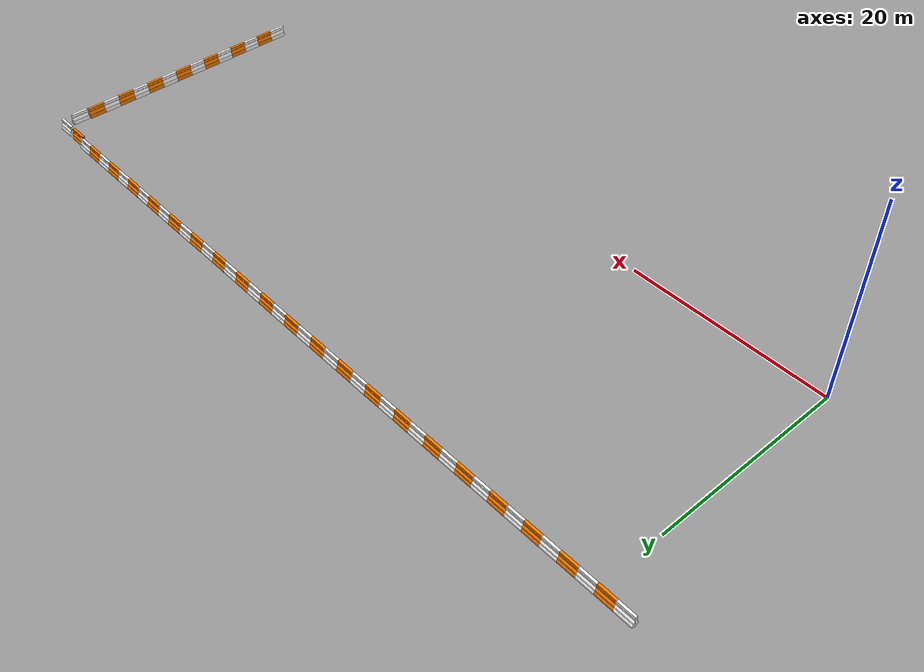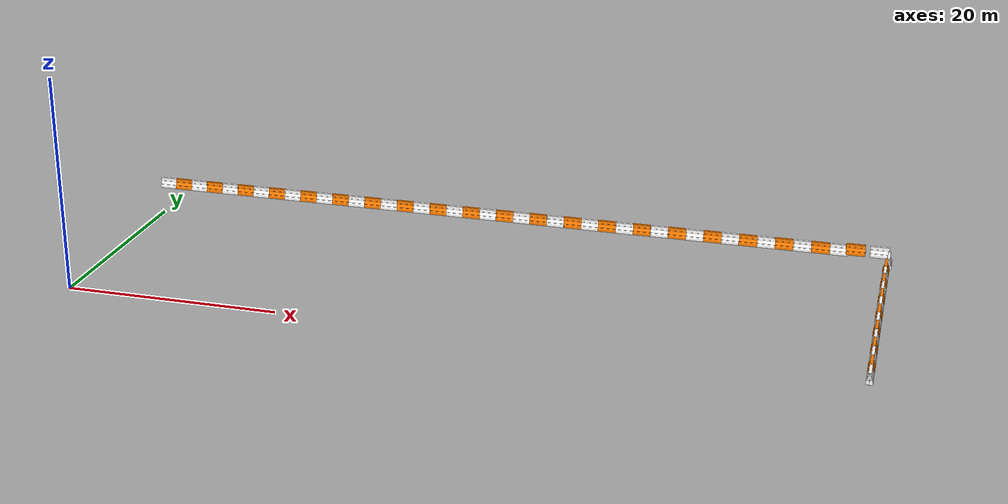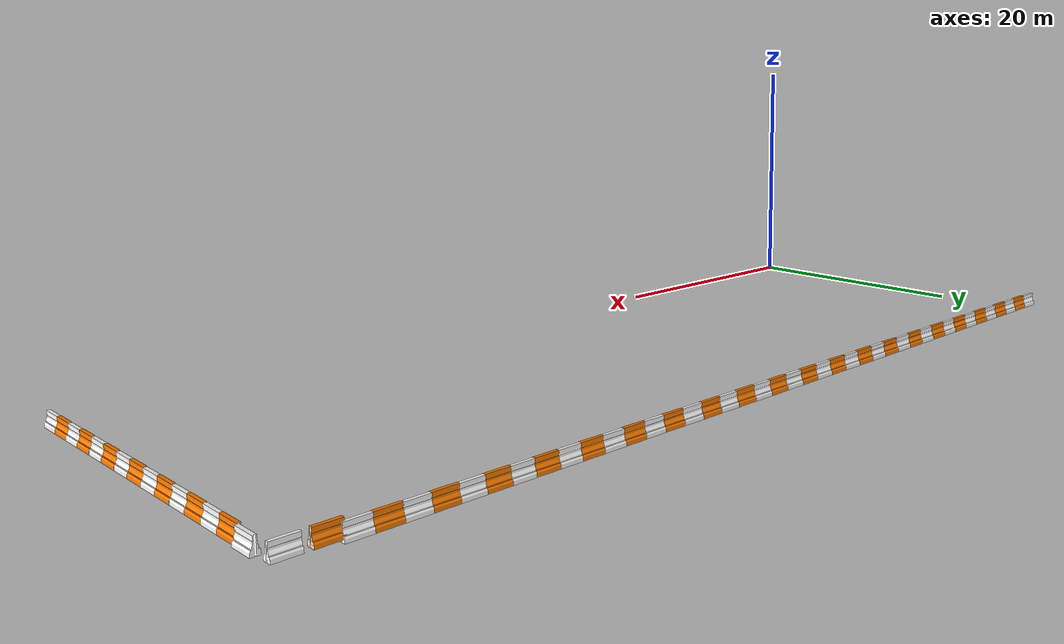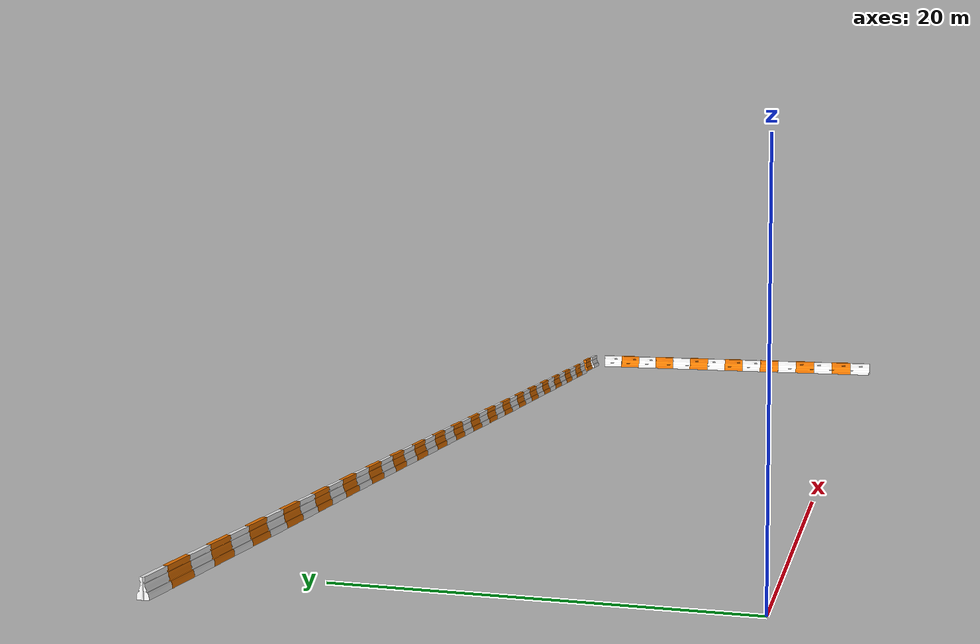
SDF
<?xml version="1.0" ?>
<sdf version='1.7'>
  <model name='White_Barrier_0'>
    <static>1</static>
    <link name='link'>
      <visual name='visual'>
        <geometry>
          <mesh>
            <uri>model://drc_practice_white_jersey_barrier/meshes/jersey_barrier.dae</uri>
          </mesh>
        </geometry>
      </visual>
      <collision name='collision'>
        <geometry>
          <mesh>
            <uri>model://drc_practice_white_jersey_barrier/meshes/jersey_barrier.dae</uri>
          </mesh>
        </geometry>
        <max_contacts>10</max_contacts>
        <surface>
          <contact>
            <ode/>
          </contact>
          <bounce/>
          <friction>
            <torsional>
              <ode/>
            </torsional>
            <ode/>
          </friction>
        </surface>
      </collision>
      <self_collide>0</self_collide>
      <enable_wind>0</enable_wind>
      <kinematic>0</kinematic>
    </link>
    <pose>71.8541 24.9076 0 0 -0 0</pose>
  </model>
  <model name='Orange_Barrier_0'>
    <static>1</static>
    <link name='link'>
      <visual name='visual'>
        <geometry>
          <mesh>
            <uri>model://drc_practice_orange_jersey_barrier/meshes/jersey_barrier.dae</uri>
          </mesh>
        </geometry>
      </visual>
      <collision name='collision'>
        <geometry>
          <mesh>
            <uri>model://drc_practice_orange_jersey_barrier/meshes/jersey_barrier.dae</uri>
          </mesh>
        </geometry>
        <max_contacts>10</max_contacts>
        <surface>
          <contact>
            <ode/>
          </contact>
          <bounce/>
          <friction>
            <torsional>
              <ode/>
            </torsional>
            <ode/>
          </friction>
        </surface>
      </collision>
      <self_collide>0</self_collide>
      <enable_wind>0</enable_wind>
      <kinematic>0</kinematic>
    </link>
    <pose>71.6996 23.0838 0 0 -0 0</pose>
  </model>
  <model name='White_Barrier_1'>
    <static>1</static>
    <link name='link'>
      <visual name='visual'>
        <geometry>
          <mesh>
            <uri>model://drc_practice_white_jersey_barrier/meshes/jersey_barrier.dae</uri>
          </mesh>
        </geometry>
      </visual>
      <collision name='collision'>
        <geometry>
          <mesh>
            <uri>model://drc_practice_white_jersey_barrier/meshes/jersey_barrier.dae</uri>
          </mesh>
        </geometry>
        <max_contacts>10</max_contacts>
        <surface>
          <contact>
            <ode/>
          </contact>
          <bounce/>
          <friction>
            <torsional>
              <ode/>
            </torsional>
            <ode/>
          </friction>
        </surface>
      </collision>
      <self_collide>0</self_collide>
      <enable_wind>0</enable_wind>
      <kinematic>0</kinematic>
    </link>
    <pose>71.6826 21.3409 0 0 -0 0</pose>
  </model>
  <model name='Orange_Barrier_1'>
    <static>1</static>
    <link name='link'>
      <visual name='visual'>
        <geometry>
          <mesh>
            <uri>model://drc_practice_orange_jersey_barrier/meshes/jersey_barrier.dae</uri>
          </mesh>
        </geometry>
      </visual>
      <collision name='collision'>
        <geometry>
          <mesh>
            <uri>model://drc_practice_orange_jersey_barrier/meshes/jersey_barrier.dae</uri>
          </mesh>
        </geometry>
        <max_contacts>10</max_contacts>
        <surface>
          <contact>
            <ode/>
          </contact>
          <bounce/>
          <friction>
            <torsional>
              <ode/>
            </torsional>
            <ode/>
          </friction>
        </surface>
      </collision>
      <self_collide>0</self_collide>
      <enable_wind>0</enable_wind>
      <kinematic>0</kinematic>
    </link>
    <pose>71.6727 19.6013 0 0 -0 0</pose>
  </model>
  <model name='White_Barrier_2'>
    <static>1</static>
    <link name='link'>
      <visual name='visual'>
        <geometry>
          <mesh>
            <uri>model://drc_practice_white_jersey_barrier/meshes/jersey_barrier.dae</uri>
          </mesh>
        </geometry>
      </visual>
      <collision name='collision'>
        <geometry>
          <mesh>
            <uri>model://drc_practice_white_jersey_barrier/meshes/jersey_barrier.dae</uri>
          </mesh>
        </geometry>
        <max_contacts>10</max_contacts>
        <surface>
          <contact>
            <ode/>
          </contact>
          <bounce/>
          <friction>
            <torsional>
              <ode/>
            </torsional>
            <ode/>
          </friction>
        </surface>
      </collision>
      <self_collide>0</self_collide>
      <enable_wind>0</enable_wind>
      <kinematic>0</kinematic>
    </link>
    <pose>71.6656 17.8502 0 0 -0 0</pose>
  </model>
  <model name='Orange_Barrier_2'>
    <static>1</static>
    <link name='link'>
      <visual name='visual'>
        <geometry>
          <mesh>
            <uri>model://drc_practice_orange_jersey_barrier/meshes/jersey_barrier.dae</uri>
          </mesh>
        </geometry>
      </visual>
      <collision name='collision'>
        <geometry>
          <mesh>
            <uri>model://drc_practice_orange_jersey_barrier/meshes/jersey_barrier.dae</uri>
          </mesh>
        </geometry>
        <max_contacts>10</max_contacts>
        <surface>
          <contact>
            <ode/>
          </contact>
          <bounce/>
          <friction>
            <torsional>
              <ode/>
            </torsional>
            <ode/>
          </friction>
        </surface>
      </collision>
      <self_collide>0</self_collide>
      <enable_wind>0</enable_wind>
      <kinematic>0</kinematic>
    </link>
    <pose>71.6589 16.1096 0 0 -0 0</pose>
  </model>
  <model name='White_Barrier_3'>
    <static>1</static>
    <link name='link'>
      <visual name='visual'>
        <geometry>
          <mesh>
            <uri>model://drc_practice_white_jersey_barrier/meshes/jersey_barrier.dae</uri>
          </mesh>
        </geometry>
      </visual>
      <collision name='collision'>
        <geometry>
          <mesh>
            <uri>model://drc_practice_white_jersey_barrier/meshes/jersey_barrier.dae</uri>
          </mesh>
        </geometry>
        <max_contacts>10</max_contacts>
        <surface>
          <contact>
            <ode/>
          </contact>
          <bounce/>
          <friction>
            <torsional>
              <ode/>
            </torsional>
            <ode/>
          </friction>
        </surface>
      </collision>
      <self_collide>0</self_collide>
      <enable_wind>0</enable_wind>
      <kinematic>0</kinematic>
    </link>
    <pose>71.6501 14.3592 0 0 -0 0</pose>
  </model>
  <model name='Orange_Barrier_3'>
    <static>1</static>
    <link name='link'>
      <visual name='visual'>
        <geometry>
          <mesh>
            <uri>model://drc_practice_orange_jersey_barrier/meshes/jersey_barrier.dae</uri>
          </mesh>
        </geometry>
      </visual>
      <collision name='collision'>
        <geometry>
          <mesh>
            <uri>model://drc_practice_orange_jersey_barrier/meshes/jersey_barrier.dae</uri>
          </mesh>
        </geometry>
        <max_contacts>10</max_contacts>
        <surface>
          <contact>
            <ode/>
          </contact>
          <bounce/>
          <friction>
            <torsional>
              <ode/>
            </torsional>
            <ode/>
          </friction>
        </surface>
      </collision>
      <self_collide>0</self_collide>
      <enable_wind>0</enable_wind>
      <kinematic>0</kinematic>
    </link>
    <pose>71.6387 12.6221 0 0 -0 0</pose>
  </model>
  <model name='White_Barrier_4'>
    <static>1</static>
    <link name='link'>
      <visual name='visual'>
        <geometry>
          <mesh>
            <uri>model://drc_practice_white_jersey_barrier/meshes/jersey_barrier.dae</uri>
          </mesh>
        </geometry>
      </visual>
      <collision name='collision'>
        <geometry>
          <mesh>
            <uri>model://drc_practice_white_jersey_barrier/meshes/jersey_barrier.dae</uri>
          </mesh>
        </geometry>
        <max_contacts>10</max_contacts>
        <surface>
          <contact>
            <ode/>
          </contact>
          <bounce/>
          <friction>
            <torsional>
              <ode/>
            </torsional>
            <ode/>
          </friction>
        </surface>
      </collision>
      <self_collide>0</self_collide>
      <enable_wind>0</enable_wind>
      <kinematic>0</kinematic>
    </link>
    <pose>71.632 10.8735 0 0 -0 0</pose>
  </model>
  <model name='Orange_Barrier_4'>
    <static>1</static>
    <link name='link'>
      <visual name='visual'>
        <geometry>
          <mesh>
            <uri>model://drc_practice_orange_jersey_barrier/meshes/jersey_barrier.dae</uri>
          </mesh>
        </geometry>
      </visual>
      <collision name='collision'>
        <geometry>
          <mesh>
            <uri>model://drc_practice_orange_jersey_barrier/meshes/jersey_barrier.dae</uri>
          </mesh>
        </geometry>
        <max_contacts>10</max_contacts>
        <surface>
          <contact>
            <ode/>
          </contact>
          <bounce/>
          <friction>
            <torsional>
              <ode/>
            </torsional>
            <ode/>
          </friction>
        </surface>
      </collision>
      <self_collide>0</self_collide>
      <enable_wind>0</enable_wind>
      <kinematic>0</kinematic>
    </link>
    <pose>71.6255 9.12889 0 0 -0 0</pose>
  </model>
  <model name='White_Barrier_5'>
    <static>1</static>
    <link name='link'>
      <visual name='visual'>
        <geometry>
          <mesh>
            <uri>model://drc_practice_white_jersey_barrier/meshes/jersey_barrier.dae</uri>
          </mesh>
        </geometry>
      </visual>
      <collision name='collision'>
        <geometry>
          <mesh>
            <uri>model://drc_practice_white_jersey_barrier/meshes/jersey_barrier.dae</uri>
          </mesh>
        </geometry>
        <max_contacts>10</max_contacts>
        <surface>
          <contact>
            <ode/>
          </contact>
          <bounce/>
          <friction>
            <torsional>
              <ode/>
            </torsional>
            <ode/>
          </friction>
        </surface>
      </collision>
      <self_collide>0</self_collide>
      <enable_wind>0</enable_wind>
      <kinematic>0</kinematic>
    </link>
    <pose>71.6246 7.3814 0 0 -0 0</pose>
  </model>
  <model name='Orange_Barrier_5'>
    <static>1</static>
    <link name='link'>
      <visual name='visual'>
        <geometry>
          <mesh>
            <uri>model://drc_practice_orange_jersey_barrier/meshes/jersey_barrier.dae</uri>
          </mesh>
        </geometry>
      </visual>
      <collision name='collision'>
        <geometry>
          <mesh>
            <uri>model://drc_practice_orange_jersey_barrier/meshes/jersey_barrier.dae</uri>
          </mesh>
        </geometry>
        <max_contacts>10</max_contacts>
        <surface>
          <contact>
            <ode/>
          </contact>
          <bounce/>
          <friction>
            <torsional>
              <ode/>
            </torsional>
            <ode/>
          </friction>
        </surface>
      </collision>
      <self_collide>0</self_collide>
      <enable_wind>0</enable_wind>
      <kinematic>0</kinematic>
    </link>
    <pose>71.62 5.63535 0 0 -0 0</pose>
  </model>
  <model name='White_Barrier_6'>
    <static>1</static>
    <link name='link'>
      <visual name='visual'>
        <geometry>
          <mesh>
            <uri>model://drc_practice_white_jersey_barrier/meshes/jersey_barrier.dae</uri>
          </mesh>
        </geometry>
      </visual>
      <collision name='collision'>
        <geometry>
          <mesh>
            <uri>model://drc_practice_white_jersey_barrier/meshes/jersey_barrier.dae</uri>
          </mesh>
        </geometry>
        <max_contacts>10</max_contacts>
        <surface>
          <contact>
            <ode/>
          </contact>
          <bounce/>
          <friction>
            <torsional>
              <ode/>
            </torsional>
            <ode/>
          </friction>
        </surface>
      </collision>
      <self_collide>0</self_collide>
      <enable_wind>0</enable_wind>
      <kinematic>0</kinematic>
    </link>
    <pose>71.6199 3.88555 0 0 -0 0</pose>
  </model>
  <model name='Orange_Barrier_6'>
    <static>1</static>
    <link name='link'>
      <visual name='visual'>
        <geometry>
          <mesh>
            <uri>model://drc_practice_orange_jersey_barrier/meshes/jersey_barrier.dae</uri>
          </mesh>
        </geometry>
      </visual>
      <collision name='collision'>
        <geometry>
          <mesh>
            <uri>model://drc_practice_orange_jersey_barrier/meshes/jersey_barrier.dae</uri>
          </mesh>
        </geometry>
        <max_contacts>10</max_contacts>
        <surface>
          <contact>
            <ode/>
          </contact>
          <bounce/>
          <friction>
            <torsional>
              <ode/>
            </torsional>
            <ode/>
          </friction>
        </surface>
      </collision>
      <self_collide>0</self_collide>
      <enable_wind>0</enable_wind>
      <kinematic>0</kinematic>
    </link>
    <pose>71.6079 2.14539 0 0 -0 0</pose>
  </model>
  <model name='White_Barrier_7'>
    <static>1</static>
    <link name='link'>
      <visual name='visual'>
        <geometry>
          <mesh>
            <uri>model://drc_practice_white_jersey_barrier/meshes/jersey_barrier.dae</uri>
          </mesh>
        </geometry>
      </visual>
      <collision name='collision'>
        <geometry>
          <mesh>
            <uri>model://drc_practice_white_jersey_barrier/meshes/jersey_barrier.dae</uri>
          </mesh>
        </geometry>
        <max_contacts>10</max_contacts>
        <surface>
          <contact>
            <ode/>
          </contact>
          <bounce/>
          <friction>
            <torsional>
              <ode/>
            </torsional>
            <ode/>
          </friction>
        </surface>
      </collision>
      <self_collide>0</self_collide>
      <enable_wind>0</enable_wind>
      <kinematic>0</kinematic>
    </link>
    <pose>71.6005 0.396889 0 0 -0 0</pose>
  </model>
  <model name='White_Barrier_8'>
    <static>1</static>
    <link name='link'>
      <visual name='visual'>
        <geometry>
          <mesh>
            <uri>model://drc_practice_white_jersey_barrier/meshes/jersey_barrier.dae</uri>
          </mesh>
        </geometry>
      </visual>
      <collision name='collision'>
        <geometry>
          <mesh>
            <uri>model://drc_practice_white_jersey_barrier/meshes/jersey_barrier.dae</uri>
          </mesh>
        </geometry>
        <max_contacts>10</max_contacts>
        <surface>
          <contact>
            <ode/>
          </contact>
          <bounce/>
          <friction>
            <torsional>
              <ode/>
            </torsional>
            <ode/>
          </friction>
        </surface>
      </collision>
      <self_collide>0</self_collide>
      <enable_wind>0</enable_wind>
      <kinematic>0</kinematic>
    </link>
    <pose>70.9692 26.7842 0 0 -0 -1.5708</pose>
  </model>
  <model name='Orange_Barrier_7'>
    <static>1</static>
    <link name='link'>
      <visual name='visual'>
        <geometry>
          <mesh>
            <uri>model://drc_practice_orange_jersey_barrier/meshes/jersey_barrier.dae</uri>
          </mesh>
        </geometry>
      </visual>
      <collision name='collision'>
        <geometry>
          <mesh>
            <uri>model://drc_practice_orange_jersey_barrier/meshes/jersey_barrier.dae</uri>
          </mesh>
        </geometry>
        <max_contacts>10</max_contacts>
        <surface>
          <contact>
            <ode/>
          </contact>
          <bounce/>
          <friction>
            <torsional>
              <ode/>
            </torsional>
            <ode/>
          </friction>
        </surface>
      </collision>
      <self_collide>0</self_collide>
      <enable_wind>0</enable_wind>
      <kinematic>0</kinematic>
    </link>
    <pose>68.7091 26.8065 0 0 -0 -1.5708</pose>
  </model>
  <model name='White_Barrier_9'>
    <static>1</static>
    <link name='link'>
      <visual name='visual'>
        <geometry>
          <mesh>
            <uri>model://drc_practice_white_jersey_barrier/meshes/jersey_barrier.dae</uri>
          </mesh>
        </geometry>
      </visual>
      <collision name='collision'>
        <geometry>
          <mesh>
            <uri>model://drc_practice_white_jersey_barrier/meshes/jersey_barrier.dae</uri>
          </mesh>
        </geometry>
        <max_contacts>10</max_contacts>
        <surface>
          <contact>
            <ode/>
          </contact>
          <bounce/>
          <friction>
            <torsional>
              <ode/>
            </torsional>
            <ode/>
          </friction>
        </surface>
      </collision>
      <self_collide>0</self_collide>
      <enable_wind>0</enable_wind>
      <kinematic>0</kinematic>
    </link>
    <pose>67.1446 26.9316 -0.18 0 0 -1.5708</pose>
  </model>
  <model name='Orange_Barrier_8'>
    <static>1</static>
    <link name='link'>
      <visual name='visual'>
        <geometry>
          <mesh>
            <uri>model://drc_practice_orange_jersey_barrier/meshes/jersey_barrier.dae</uri>
          </mesh>
        </geometry>
      </visual>
      <collision name='collision'>
        <geometry>
          <mesh>
            <uri>model://drc_practice_orange_jersey_barrier/meshes/jersey_barrier.dae</uri>
          </mesh>
        </geometry>
        <max_contacts>10</max_contacts>
        <surface>
          <contact>
            <ode/>
          </contact>
          <bounce/>
          <friction>
            <torsional>
              <ode/>
            </torsional>
            <ode/>
          </friction>
        </surface>
      </collision>
      <self_collide>0</self_collide>
      <enable_wind>0</enable_wind>
      <kinematic>0</kinematic>
    </link>
    <pose>65.3989 26.9299 -0.18 0 0 -1.5708</pose>
  </model>
  <model name='White_Barrier_10'>
    <static>1</static>
    <link name='link'>
      <visual name='visual'>
        <geometry>
          <mesh>
            <uri>model://drc_practice_white_jersey_barrier/meshes/jersey_barrier.dae</uri>
          </mesh>
        </geometry>
      </visual>
      <collision name='collision'>
        <geometry>
          <mesh>
            <uri>model://drc_practice_white_jersey_barrier/meshes/jersey_barrier.dae</uri>
          </mesh>
        </geometry>
        <max_contacts>10</max_contacts>
        <surface>
          <contact>
            <ode/>
          </contact>
          <bounce/>
          <friction>
            <torsional>
              <ode/>
            </torsional>
            <ode/>
          </friction>
        </surface>
      </collision>
      <self_collide>0</self_collide>
      <enable_wind>0</enable_wind>
      <kinematic>0</kinematic>
    </link>
    <pose>63.6593 26.9384 -0.18 0 0 -1.5708</pose>
  </model>
  <model name='Orange_Barrier_9'>
    <static>1</static>
    <link name='link'>
      <visual name='visual'>
        <geometry>
          <mesh>
            <uri>model://drc_practice_orange_jersey_barrier/meshes/jersey_barrier.dae</uri>
          </mesh>
        </geometry>
      </visual>
      <collision name='collision'>
        <geometry>
          <mesh>
            <uri>model://drc_practice_orange_jersey_barrier/meshes/jersey_barrier.dae</uri>
          </mesh>
        </geometry>
        <max_contacts>10</max_contacts>
        <surface>
          <contact>
            <ode/>
          </contact>
          <bounce/>
          <friction>
            <torsional>
              <ode/>
            </torsional>
            <ode/>
          </friction>
        </surface>
      </collision>
      <self_collide>0</self_collide>
      <enable_wind>0</enable_wind>
      <kinematic>0</kinematic>
    </link>
    <pose>61.9171 26.9366 -0.18 0 0 -1.5708</pose>
  </model>
  <model name='White_Barrier_11'>
    <static>1</static>
    <link name='link'>
      <visual name='visual'>
        <geometry>
          <mesh>
            <uri>model://drc_practice_white_jersey_barrier/meshes/jersey_barrier.dae</uri>
          </mesh>
        </geometry>
      </visual>
      <collision name='collision'>
        <geometry>
          <mesh>
            <uri>model://drc_practice_white_jersey_barrier/meshes/jersey_barrier.dae</uri>
          </mesh>
        </geometry>
        <max_contacts>10</max_contacts>
        <surface>
          <contact>
            <ode/>
          </contact>
          <bounce/>
          <friction>
            <torsional>
              <ode/>
            </torsional>
            <ode/>
          </friction>
        </surface>
      </collision>
      <self_collide>0</self_collide>
      <enable_wind>0</enable_wind>
      <kinematic>0</kinematic>
    </link>
    <pose>60.1789 26.937 -0.18 0 0 -1.5708</pose>
  </model>
  <model name='Orange_Barrier_10'>
    <static>1</static>
    <link name='link'>
      <visual name='visual'>
        <geometry>
          <mesh>
            <uri>model://drc_practice_orange_jersey_barrier/meshes/jersey_barrier.dae</uri>
          </mesh>
        </geometry>
      </visual>
      <collision name='collision'>
        <geometry>
          <mesh>
            <uri>model://drc_practice_orange_jersey_barrier/meshes/jersey_barrier.dae</uri>
          </mesh>
        </geometry>
        <max_contacts>10</max_contacts>
        <surface>
          <contact>
            <ode/>
          </contact>
          <bounce/>
          <friction>
            <torsional>
              <ode/>
            </torsional>
            <ode/>
          </friction>
        </surface>
      </collision>
      <self_collide>0</self_collide>
      <enable_wind>0</enable_wind>
      <kinematic>0</kinematic>
    </link>
    <pose>58.4402 26.9344 -0.18 0 0 -1.5708</pose>
  </model>
  <model name='White_Barrier_12'>
    <static>1</static>
    <link name='link'>
      <visual name='visual'>
        <geometry>
          <mesh>
            <uri>model://drc_practice_white_jersey_barrier/meshes/jersey_barrier.dae</uri>
          </mesh>
        </geometry>
      </visual>
      <collision name='collision'>
        <geometry>
          <mesh>
            <uri>model://drc_practice_white_jersey_barrier/meshes/jersey_barrier.dae</uri>
          </mesh>
        </geometry>
        <max_contacts>10</max_contacts>
        <surface>
          <contact>
            <ode/>
          </contact>
          <bounce/>
          <friction>
            <torsional>
              <ode/>
            </torsional>
            <ode/>
          </friction>
        </surface>
      </collision>
      <self_collide>0</self_collide>
      <enable_wind>0</enable_wind>
      <kinematic>0</kinematic>
    </link>
    <pose>56.7081 26.9391 -0.18 0 0 -1.5708</pose>
  </model>
  <model name='Orange_Barrier_11'>
    <static>1</static>
    <link name='link'>
      <visual name='visual'>
        <geometry>
          <mesh>
            <uri>model://drc_practice_orange_jersey_barrier/meshes/jersey_barrier.dae</uri>
          </mesh>
        </geometry>
      </visual>
      <collision name='collision'>
        <geometry>
          <mesh>
            <uri>model://drc_practice_orange_jersey_barrier/meshes/jersey_barrier.dae</uri>
          </mesh>
        </geometry>
        <max_contacts>10</max_contacts>
        <surface>
          <contact>
            <ode/>
          </contact>
          <bounce/>
          <friction>
            <torsional>
              <ode/>
            </torsional>
            <ode/>
          </friction>
        </surface>
      </collision>
      <self_collide>0</self_collide>
      <enable_wind>0</enable_wind>
      <kinematic>0</kinematic>
    </link>
    <pose>54.9667 26.9441 -0.18 0 0 -1.5708</pose>
  </model>
  <model name='White_Barrier_13'>
    <static>1</static>
    <link name='link'>
      <visual name='visual'>
        <geometry>
          <mesh>
            <uri>model://drc_practice_white_jersey_barrier/meshes/jersey_barrier.dae</uri>
          </mesh>
        </geometry>
      </visual>
      <collision name='collision'>
        <geometry>
          <mesh>
            <uri>model://drc_practice_white_jersey_barrier/meshes/jersey_barrier.dae</uri>
          </mesh>
        </geometry>
        <max_contacts>10</max_contacts>
        <surface>
          <contact>
            <ode/>
          </contact>
          <bounce/>
          <friction>
            <torsional>
              <ode/>
            </torsional>
            <ode/>
          </friction>
        </surface>
      </collision>
      <self_collide>0</self_collide>
      <enable_wind>0</enable_wind>
      <kinematic>0</kinematic>
    </link>
    <pose>53.2245 26.9447 -0.18 0 0 -1.5708</pose>
  </model>
  <model name='Orange_Barrier_12'>
    <static>1</static>
    <link name='link'>
      <visual name='visual'>
        <geometry>
          <mesh>
            <uri>model://drc_practice_orange_jersey_barrier/meshes/jersey_barrier.dae</uri>
          </mesh>
        </geometry>
      </visual>
      <collision name='collision'>
        <geometry>
          <mesh>
            <uri>model://drc_practice_orange_jersey_barrier/meshes/jersey_barrier.dae</uri>
          </mesh>
        </geometry>
        <max_contacts>10</max_contacts>
        <surface>
          <contact>
            <ode/>
          </contact>
          <bounce/>
          <friction>
            <torsional>
              <ode/>
            </torsional>
            <ode/>
          </friction>
        </surface>
      </collision>
      <self_collide>0</self_collide>
      <enable_wind>0</enable_wind>
      <kinematic>0</kinematic>
    </link>
    <pose>51.486 26.9505 -0.18 0 0 -1.5708</pose>
  </model>
  <model name='White_Barrier_14'>
    <static>1</static>
    <link name='link'>
      <visual name='visual'>
        <geometry>
          <mesh>
            <uri>model://drc_practice_white_jersey_barrier/meshes/jersey_barrier.dae</uri>
          </mesh>
        </geometry>
      </visual>
      <collision name='collision'>
        <geometry>
          <mesh>
            <uri>model://drc_practice_white_jersey_barrier/meshes/jersey_barrier.dae</uri>
          </mesh>
        </geometry>
        <max_contacts>10</max_contacts>
        <surface>
          <contact>
            <ode/>
          </contact>
          <bounce/>
          <friction>
            <torsional>
              <ode/>
            </torsional>
            <ode/>
          </friction>
        </surface>
      </collision>
      <self_collide>0</self_collide>
      <enable_wind>0</enable_wind>
      <kinematic>0</kinematic>
    </link>
    <pose>49.7323 26.948 -0.18 0 0 -1.5708</pose>
  </model>
  <model name='Orange_Barrier_13'>
    <static>1</static>
    <link name='link'>
      <visual name='visual'>
        <geometry>
          <mesh>
            <uri>model://drc_practice_orange_jersey_barrier/meshes/jersey_barrier.dae</uri>
          </mesh>
        </geometry>
      </visual>
      <collision name='collision'>
        <geometry>
          <mesh>
            <uri>model://drc_practice_orange_jersey_barrier/meshes/jersey_barrier.dae</uri>
          </mesh>
        </geometry>
        <max_contacts>10</max_contacts>
        <surface>
          <contact>
            <ode/>
          </contact>
          <bounce/>
          <friction>
            <torsional>
              <ode/>
            </torsional>
            <ode/>
          </friction>
        </surface>
      </collision>
      <self_collide>0</self_collide>
      <enable_wind>0</enable_wind>
      <kinematic>0</kinematic>
    </link>
    <pose>47.9831 26.9378 -0.18 0 0 -1.5708</pose>
  </model>
  <model name='White_Barrier_15'>
    <static>1</static>
    <link name='link'>
      <visual name='visual'>
        <geometry>
          <mesh>
            <uri>model://drc_practice_white_jersey_barrier/meshes/jersey_barrier.dae</uri>
          </mesh>
        </geometry>
      </visual>
      <collision name='collision'>
        <geometry>
          <mesh>
            <uri>model://drc_practice_white_jersey_barrier/meshes/jersey_barrier.dae</uri>
          </mesh>
        </geometry>
        <max_contacts>10</max_contacts>
        <surface>
          <contact>
            <ode/>
          </contact>
          <bounce/>
          <friction>
            <torsional>
              <ode/>
            </torsional>
            <ode/>
          </friction>
        </surface>
      </collision>
      <self_collide>0</self_collide>
      <enable_wind>0</enable_wind>
      <kinematic>0</kinematic>
    </link>
    <pose>46.2494 26.9177 -0.18 0 0 -1.5708</pose>
  </model>
  <model name='Orange_Barrier_14'>
    <static>1</static>
    <link name='link'>
      <visual name='visual'>
        <geometry>
          <mesh>
            <uri>model://drc_practice_orange_jersey_barrier/meshes/jersey_barrier.dae</uri>
          </mesh>
        </geometry>
      </visual>
      <collision name='collision'>
        <geometry>
          <mesh>
            <uri>model://drc_practice_orange_jersey_barrier/meshes/jersey_barrier.dae</uri>
          </mesh>
        </geometry>
        <max_contacts>10</max_contacts>
        <surface>
          <contact>
            <ode/>
          </contact>
          <bounce/>
          <friction>
            <torsional>
              <ode/>
            </torsional>
            <ode/>
          </friction>
        </surface>
      </collision>
      <self_collide>0</self_collide>
      <enable_wind>0</enable_wind>
      <kinematic>0</kinematic>
    </link>
    <pose>44.497 26.9304 -0.18 0 0 -1.5708</pose>
  </model>
  <model name='White_Barrier_16'>
    <static>1</static>
    <link name='link'>
      <visual name='visual'>
        <geometry>
          <mesh>
            <uri>model://drc_practice_white_jersey_barrier/meshes/jersey_barrier.dae</uri>
          </mesh>
        </geometry>
      </visual>
      <collision name='collision'>
        <geometry>
          <mesh>
            <uri>model://drc_practice_white_jersey_barrier/meshes/jersey_barrier.dae</uri>
          </mesh>
        </geometry>
        <max_contacts>10</max_contacts>
        <surface>
          <contact>
            <ode/>
          </contact>
          <bounce/>
          <friction>
            <torsional>
              <ode/>
            </torsional>
            <ode/>
          </friction>
        </surface>
      </collision>
      <self_collide>0</self_collide>
      <enable_wind>0</enable_wind>
      <kinematic>0</kinematic>
    </link>
    <pose>42.7602 26.9374 -0.18 0 0 -1.5708</pose>
  </model>
  <model name='Orange_Barrier_15'>
    <static>1</static>
    <link name='link'>
      <visual name='visual'>
        <geometry>
          <mesh>
            <uri>model://drc_practice_orange_jersey_barrier/meshes/jersey_barrier.dae</uri>
          </mesh>
        </geometry>
      </visual>
      <collision name='collision'>
        <geometry>
          <mesh>
            <uri>model://drc_practice_orange_jersey_barrier/meshes/jersey_barrier.dae</uri>
          </mesh>
        </geometry>
        <max_contacts>10</max_contacts>
        <surface>
          <contact>
            <ode/>
          </contact>
          <bounce/>
          <friction>
            <torsional>
              <ode/>
            </torsional>
            <ode/>
          </friction>
        </surface>
      </collision>
      <self_collide>0</self_collide>
      <enable_wind>0</enable_wind>
      <kinematic>0</kinematic>
    </link>
    <pose>41.0065 26.9509 -0.18 0 0 -1.5708</pose>
  </model>
  <model name='White_Barrier_17'>
    <static>1</static>
    <link name='link'>
      <visual name='visual'>
        <geometry>
          <mesh>
            <uri>model://drc_practice_white_jersey_barrier/meshes/jersey_barrier.dae</uri>
          </mesh>
        </geometry>
      </visual>
      <collision name='collision'>
        <geometry>
          <mesh>
            <uri>model://drc_practice_white_jersey_barrier/meshes/jersey_barrier.dae</uri>
          </mesh>
        </geometry>
        <max_contacts>10</max_contacts>
        <surface>
          <contact>
            <ode/>
          </contact>
          <bounce/>
          <friction>
            <torsional>
              <ode/>
            </torsional>
            <ode/>
          </friction>
        </surface>
      </collision>
      <self_collide>0</self_collide>
      <enable_wind>0</enable_wind>
      <kinematic>0</kinematic>
    </link>
    <pose>39.2359 26.9565 -0.18 0 0 -1.5708</pose>
  </model>
  <model name='Orange_Barrier_16'>
    <static>1</static>
    <link name='link'>
      <visual name='visual'>
        <geometry>
          <mesh>
            <uri>model://drc_practice_orange_jersey_barrier/meshes/jersey_barrier.dae</uri>
          </mesh>
        </geometry>
      </visual>
      <collision name='collision'>
        <geometry>
          <mesh>
            <uri>model://drc_practice_orange_jersey_barrier/meshes/jersey_barrier.dae</uri>
          </mesh>
        </geometry>
        <max_contacts>10</max_contacts>
        <surface>
          <contact>
            <ode/>
          </contact>
          <bounce/>
          <friction>
            <torsional>
              <ode/>
            </torsional>
            <ode/>
          </friction>
        </surface>
      </collision>
      <self_collide>0</self_collide>
      <enable_wind>0</enable_wind>
      <kinematic>0</kinematic>
    </link>
    <pose>37.4778 26.9602 -0.18 0 0 -1.5708</pose>
  </model>
  <model name='White_Barrier_18'>
    <static>1</static>
    <link name='link'>
      <visual name='visual'>
        <geometry>
          <mesh>
            <uri>model://drc_practice_white_jersey_barrier/meshes/jersey_barrier.dae</uri>
          </mesh>
        </geometry>
      </visual>
      <collision name='collision'>
        <geometry>
          <mesh>
            <uri>model://drc_practice_white_jersey_barrier/meshes/jersey_barrier.dae</uri>
          </mesh>
        </geometry>
        <max_contacts>10</max_contacts>
        <surface>
          <contact>
            <ode/>
          </contact>
          <bounce/>
          <friction>
            <torsional>
              <ode/>
            </torsional>
            <ode/>
          </friction>
        </surface>
      </collision>
      <self_collide>0</self_collide>
      <enable_wind>0</enable_wind>
      <kinematic>0</kinematic>
    </link>
    <pose>35.7416 26.9725 -0.18 0 0 -1.5708</pose>
  </model>
  <model name='Orange_Barrier_17'>
    <static>1</static>
    <link name='link'>
      <visual name='visual'>
        <geometry>
          <mesh>
            <uri>model://drc_practice_orange_jersey_barrier/meshes/jersey_barrier.dae</uri>
          </mesh>
        </geometry>
      </visual>
      <collision name='collision'>
        <geometry>
          <mesh>
            <uri>model://drc_practice_orange_jersey_barrier/meshes/jersey_barrier.dae</uri>
          </mesh>
        </geometry>
        <max_contacts>10</max_contacts>
        <surface>
          <contact>
            <ode/>
          </contact>
          <bounce/>
          <friction>
            <torsional>
              <ode/>
            </torsional>
            <ode/>
          </friction>
        </surface>
      </collision>
      <self_collide>0</self_collide>
      <enable_wind>0</enable_wind>
      <kinematic>0</kinematic>
    </link>
    <pose>33.9965 26.979 -0.18 0 0 -1.5708</pose>
  </model>
  <model name='White_Barrier_19'>
    <static>1</static>
    <link name='link'>
      <visual name='visual'>
        <geometry>
          <mesh>
            <uri>model://drc_practice_white_jersey_barrier/meshes/jersey_barrier.dae</uri>
          </mesh>
        </geometry>
      </visual>
      <collision name='collision'>
        <geometry>
          <mesh>
            <uri>model://drc_practice_white_jersey_barrier/meshes/jersey_barrier.dae</uri>
          </mesh>
        </geometry>
        <max_contacts>10</max_contacts>
        <surface>
          <contact>
            <ode/>
          </contact>
          <bounce/>
          <friction>
            <torsional>
              <ode/>
            </torsional>
            <ode/>
          </friction>
        </surface>
      </collision>
      <self_collide>0</self_collide>
      <enable_wind>0</enable_wind>
      <kinematic>0</kinematic>
    </link>
    <pose>32.2509 26.9759 -0.18 0 0 -1.5708</pose>
  </model>
  <model name='Orange_Barrier_18'>
    <static>1</static>
    <link name='link'>
      <visual name='visual'>
        <geometry>
          <mesh>
            <uri>model://drc_practice_orange_jersey_barrier/meshes/jersey_barrier.dae</uri>
          </mesh>
        </geometry>
      </visual>
      <collision name='collision'>
        <geometry>
          <mesh>
            <uri>model://drc_practice_orange_jersey_barrier/meshes/jersey_barrier.dae</uri>
          </mesh>
        </geometry>
        <max_contacts>10</max_contacts>
        <surface>
          <contact>
            <ode/>
          </contact>
          <bounce/>
          <friction>
            <torsional>
              <ode/>
            </torsional>
            <ode/>
          </friction>
        </surface>
      </collision>
      <self_collide>0</self_collide>
      <enable_wind>0</enable_wind>
      <kinematic>0</kinematic>
    </link>
    <pose>30.5118 26.9739 -0.18 0 0 -1.5708</pose>
  </model>
  <model name='White_Barrier_20'>
    <static>1</static>
    <link name='link'>
      <visual name='visual'>
        <geometry>
          <mesh>
            <uri>model://drc_practice_white_jersey_barrier/meshes/jersey_barrier.dae</uri>
          </mesh>
        </geometry>
      </visual>
      <collision name='collision'>
        <geometry>
          <mesh>
            <uri>model://drc_practice_white_jersey_barrier/meshes/jersey_barrier.dae</uri>
          </mesh>
        </geometry>
        <max_contacts>10</max_contacts>
        <surface>
          <contact>
            <ode/>
          </contact>
          <bounce/>
          <friction>
            <torsional>
              <ode/>
            </torsional>
            <ode/>
          </friction>
        </surface>
      </collision>
      <self_collide>0</self_collide>
      <enable_wind>0</enable_wind>
      <kinematic>0</kinematic>
    </link>
    <pose>28.7625 26.974 -0.18 0 0 -1.5708</pose>
  </model>
  <model name='Orange_Barrier_19'>
    <static>1</static>
    <link name='link'>
      <visual name='visual'>
        <geometry>
          <mesh>
            <uri>model://drc_practice_orange_jersey_barrier/meshes/jersey_barrier.dae</uri>
          </mesh>
        </geometry>
      </visual>
      <collision name='collision'>
        <geometry>
          <mesh>
            <uri>model://drc_practice_orange_jersey_barrier/meshes/jersey_barrier.dae</uri>
          </mesh>
        </geometry>
        <max_contacts>10</max_contacts>
        <surface>
          <contact>
            <ode/>
          </contact>
          <bounce/>
          <friction>
            <torsional>
              <ode/>
            </torsional>
            <ode/>
          </friction>
        </surface>
      </collision>
      <self_collide>0</self_collide>
      <enable_wind>0</enable_wind>
      <kinematic>0</kinematic>
    </link>
    <pose>27.013 26.9721 -0.18 0 0 -1.5708</pose>
  </model>
  <model name='White_Barrier_21'>
    <static>1</static>
    <link name='link'>
      <visual name='visual'>
        <geometry>
          <mesh>
            <uri>model://drc_practice_white_jersey_barrier/meshes/jersey_barrier.dae</uri>
          </mesh>
        </geometry>
      </visual>
      <collision name='collision'>
        <geometry>
          <mesh>
            <uri>model://drc_practice_white_jersey_barrier/meshes/jersey_barrier.dae</uri>
          </mesh>
        </geometry>
        <max_contacts>10</max_contacts>
        <surface>
          <contact>
            <ode/>
          </contact>
          <bounce/>
          <friction>
            <torsional>
              <ode/>
            </torsional>
            <ode/>
          </friction>
        </surface>
      </collision>
      <self_collide>0</self_collide>
      <enable_wind>0</enable_wind>
      <kinematic>0</kinematic>
    </link>
    <pose>25.2607 26.988 -0.18 0 0 -1.5708</pose>
  </model>
  <model name='Orange_Barrier_20'>
    <static>1</static>
    <link name='link'>
      <visual name='visual'>
        <geometry>
          <mesh>
            <uri>model://drc_practice_orange_jersey_barrier/meshes/jersey_barrier.dae</uri>
          </mesh>
        </geometry>
      </visual>
      <collision name='collision'>
        <geometry>
          <mesh>
            <uri>model://drc_practice_orange_jersey_barrier/meshes/jersey_barrier.dae</uri>
          </mesh>
        </geometry>
        <max_contacts>10</max_contacts>
        <surface>
          <contact>
            <ode/>
          </contact>
          <bounce/>
          <friction>
            <torsional>
              <ode/>
            </torsional>
            <ode/>
          </friction>
        </surface>
      </collision>
      <self_collide>0</self_collide>
      <enable_wind>0</enable_wind>
      <kinematic>0</kinematic>
    </link>
    <pose>23.5045 26.9856 -0.18 0 0 -1.5708</pose>
  </model>
  <model name='White_Barrier_22'>
    <static>1</static>
    <link name='link'>
      <visual name='visual'>
        <geometry>
          <mesh>
            <uri>model://drc_practice_white_jersey_barrier/meshes/jersey_barrier.dae</uri>
          </mesh>
        </geometry>
      </visual>
      <collision name='collision'>
        <geometry>
          <mesh>
            <uri>model://drc_practice_white_jersey_barrier/meshes/jersey_barrier.dae</uri>
          </mesh>
        </geometry>
        <max_contacts>10</max_contacts>
        <surface>
          <contact>
            <ode/>
          </contact>
          <bounce/>
          <friction>
            <torsional>
              <ode/>
            </torsional>
            <ode/>
          </friction>
        </surface>
      </collision>
      <self_collide>0</self_collide>
      <enable_wind>0</enable_wind>
      <kinematic>0</kinematic>
    </link>
    <pose>21.7698 26.981 -0.18 0 0 -1.5708</pose>
  </model>
  <model name='Orange_Barrier_21'>
    <static>1</static>
    <link name='link'>
      <visual name='visual'>
        <geometry>
          <mesh>
            <uri>model://drc_practice_orange_jersey_barrier/meshes/jersey_barrier.dae</uri>
          </mesh>
        </geometry>
      </visual>
      <collision name='collision'>
        <geometry>
          <mesh>
            <uri>model://drc_practice_orange_jersey_barrier/meshes/jersey_barrier.dae</uri>
          </mesh>
        </geometry>
        <max_contacts>10</max_contacts>
        <surface>
          <contact>
            <ode/>
          </contact>
          <bounce/>
          <friction>
            <torsional>
              <ode/>
            </torsional>
            <ode/>
          </friction>
        </surface>
      </collision>
      <self_collide>0</self_collide>
      <enable_wind>0</enable_wind>
      <kinematic>0</kinematic>
    </link>
    <pose>20.015 26.9863 -0.18 0 0 -1.5708</pose>
  </model>
  <model name='White_Barrier_23'>
    <static>1</static>
    <link name='link'>
      <visual name='visual'>
        <geometry>
          <mesh>
            <uri>model://drc_practice_white_jersey_barrier/meshes/jersey_barrier.dae</uri>
          </mesh>
        </geometry>
      </visual>
      <collision name='collision'>
        <geometry>
          <mesh>
            <uri>model://drc_practice_white_jersey_barrier/meshes/jersey_barrier.dae</uri>
          </mesh>
        </geometry>
        <max_contacts>10</max_contacts>
        <surface>
          <contact>
            <ode/>
          </contact>
          <bounce/>
          <friction>
            <torsional>
              <ode/>
            </torsional>
            <ode/>
          </friction>
        </surface>
      </collision>
      <self_collide>0</self_collide>
      <enable_wind>0</enable_wind>
      <kinematic>0</kinematic>
    </link>
    <pose>18.2701 26.9925 -0.18 0 0 -1.5708</pose>
  </model>
  <model name='Orange_Barrier_22'>
    <static>1</static>
    <link name='link'>
      <visual name='visual'>
        <geometry>
          <mesh>
            <uri>model://drc_practice_orange_jersey_barrier/meshes/jersey_barrier.dae</uri>
          </mesh>
        </geometry>
      </visual>
      <collision name='collision'>
        <geometry>
          <mesh>
            <uri>model://drc_practice_orange_jersey_barrier/meshes/jersey_barrier.dae</uri>
          </mesh>
        </geometry>
        <max_contacts>10</max_contacts>
        <surface>
          <contact>
            <ode/>
          </contact>
          <bounce/>
          <friction>
            <torsional>
              <ode/>
            </torsional>
            <ode/>
          </friction>
        </surface>
      </collision>
      <self_collide>0</self_collide>
      <enable_wind>0</enable_wind>
      <kinematic>0</kinematic>
    </link>
    <pose>16.516 26.9941 -0.18 0 0 -1.5708</pose>
  </model>
  <model name='White_Barrier_24'>
    <static>1</static>
    <link name='link'>
      <visual name='visual'>
        <geometry>
          <mesh>
            <uri>model://drc_practice_white_jersey_barrier/meshes/jersey_barrier.dae</uri>
          </mesh>
        </geometry>
      </visual>
      <collision name='collision'>
        <geometry>
          <mesh>
            <uri>model://drc_practice_white_jersey_barrier/meshes/jersey_barrier.dae</uri>
          </mesh>
        </geometry>
        <max_contacts>10</max_contacts>
        <surface>
          <contact>
            <ode/>
          </contact>
          <bounce/>
          <friction>
            <torsional>
              <ode/>
            </torsional>
            <ode/>
          </friction>
        </surface>
      </collision>
      <self_collide>0</self_collide>
      <enable_wind>0</enable_wind>
      <kinematic>0</kinematic>
    </link>
    <pose>14.7748 26.9854 -0.18 0 0 -1.5708</pose>
  </model>
  <model name='Orange_Barrier_23'>
    <static>1</static>
    <link name='link'>
      <visual name='visual'>
        <geometry>
          <mesh>
            <uri>model://drc_practice_orange_jersey_barrier/meshes/jersey_barrier.dae</uri>
          </mesh>
        </geometry>
      </visual>
      <collision name='collision'>
        <geometry>
          <mesh>
            <uri>model://drc_practice_orange_jersey_barrier/meshes/jersey_barrier.dae</uri>
          </mesh>
        </geometry>
        <max_contacts>10</max_contacts>
        <surface>
          <contact>
            <ode/>
          </contact>
          <bounce/>
          <friction>
            <torsional>
              <ode/>
            </torsional>
            <ode/>
          </friction>
        </surface>
      </collision>
      <self_collide>0</self_collide>
      <enable_wind>0</enable_wind>
      <kinematic>0</kinematic>
    </link>
    <pose>13.0236 26.9836 -0.18 0 0 -1.5708</pose>
  </model>
  <model name='White_Barrier_25'>
    <static>1</static>
    <link name='link'>
      <visual name='visual'>
        <geometry>
          <mesh>
            <uri>model://drc_practice_white_jersey_barrier/meshes/jersey_barrier.dae</uri>
          </mesh>
        </geometry>
      </visual>
      <collision name='collision'>
        <geometry>
          <mesh>
            <uri>model://drc_practice_white_jersey_barrier/meshes/jersey_barrier.dae</uri>
          </mesh>
        </geometry>
        <max_contacts>10</max_contacts>
        <surface>
          <contact>
            <ode/>
          </contact>
          <bounce/>
          <friction>
            <torsional>
              <ode/>
            </torsional>
            <ode/>
          </friction>
        </surface>
      </collision>
      <self_collide>0</self_collide>
      <enable_wind>0</enable_wind>
      <kinematic>0</kinematic>
    </link>
    <pose>11.2725 26.9731 -0.18 0 0 -1.5708</pose>
  </model>
  <model name='Orange_Barrier_24'>
    <static>1</static>
    <link name='link'>
      <visual name='visual'>
        <geometry>
          <mesh>
            <uri>model://drc_practice_orange_jersey_barrier/meshes/jersey_barrier.dae</uri>
          </mesh>
        </geometry>
      </visual>
      <collision name='collision'>
        <geometry>
          <mesh>
            <uri>model://drc_practice_orange_jersey_barrier/meshes/jersey_barrier.dae</uri>
          </mesh>
        </geometry>
        <max_contacts>10</max_contacts>
        <surface>
          <contact>
            <ode/>
          </contact>
          <bounce/>
          <friction>
            <torsional>
              <ode/>
            </torsional>
            <ode/>
          </friction>
        </surface>
      </collision>
      <self_collide>0</self_collide>
      <enable_wind>0</enable_wind>
      <kinematic>0</kinematic>
    </link>
    <pose>9.52745 26.9782 -0.18 0 0 -1.5708</pose>
  </model>
  <model name='White_Barrier_26'>
    <static>1</static>
    <link name='link'>
      <visual name='visual'>
        <geometry>
          <mesh>
            <uri>model://drc_practice_white_jersey_barrier/meshes/jersey_barrier.dae</uri>
          </mesh>
        </geometry>
      </visual>
      <collision name='collision'>
        <geometry>
          <mesh>
            <uri>model://drc_practice_white_jersey_barrier/meshes/jersey_barrier.dae</uri>
          </mesh>
        </geometry>
        <max_contacts>10</max_contacts>
        <surface>
          <contact>
            <ode/>
          </contact>
          <bounce/>
          <friction>
            <torsional>
              <ode/>
            </torsional>
            <ode/>
          </friction>
        </surface>
      </collision>
      <self_collide>0</self_collide>
      <enable_wind>0</enable_wind>
      <kinematic>0</kinematic>
    </link>
    <pose>7.77791 26.973 -0.18 0 0 -1.5708</pose>
  </model>
  <model name='Orange_Barrier_25'>
    <static>1</static>
    <link name='link'>
      <visual name='visual'>
        <geometry>
          <mesh>
            <uri>model://drc_practice_orange_jersey_barrier/meshes/jersey_barrier.dae</uri>
          </mesh>
        </geometry>
      </visual>
      <collision name='collision'>
        <geometry>
          <mesh>
            <uri>model://drc_practice_orange_jersey_barrier/meshes/jersey_barrier.dae</uri>
          </mesh>
        </geometry>
        <max_contacts>10</max_contacts>
        <surface>
          <contact>
            <ode/>
          </contact>
          <bounce/>
          <friction>
            <torsional>
              <ode/>
            </torsional>
            <ode/>
          </friction>
        </surface>
      </collision>
      <self_collide>0</self_collide>
      <enable_wind>0</enable_wind>
      <kinematic>0</kinematic>
    </link>
    <pose>6.02986 26.9775 -0.18 0 0 -1.5708</pose>
  </model>
  <model name='White_Barrier_27'>
    <static>1</static>
    <link name='link'>
      <visual name='visual'>
        <geometry>
          <mesh>
            <uri>model://drc_practice_white_jersey_barrier/meshes/jersey_barrier.dae</uri>
          </mesh>
        </geometry>
      </visual>
      <collision name='collision'>
        <geometry>
          <mesh>
            <uri>model://drc_practice_white_jersey_barrier/meshes/jersey_barrier.dae</uri>
          </mesh>
        </geometry>
        <max_contacts>10</max_contacts>
        <surface>
          <contact>
            <ode/>
          </contact>
          <bounce/>
          <friction>
            <torsional>
              <ode/>
            </torsional>
            <ode/>
          </friction>
        </surface>
      </collision>
      <self_collide>0</self_collide>
      <enable_wind>0</enable_wind>
      <kinematic>0</kinematic>
    </link>
    <pose>4.28981 26.9719 -0.18 0 0 -1.5708</pose>
  </model>
  <model name='Orange_Barrier_26'>
    <static>1</static>
    <link name='link'>
      <visual name='visual'>
        <geometry>
          <mesh>
            <uri>model://drc_practice_orange_jersey_barrier/meshes/jersey_barrier.dae</uri>
          </mesh>
        </geometry>
      </visual>
      <collision name='collision'>
        <geometry>
          <mesh>
            <uri>model://drc_practice_orange_jersey_barrier/meshes/jersey_barrier.dae</uri>
          </mesh>
        </geometry>
        <max_contacts>10</max_contacts>
        <surface>
          <contact>
            <ode/>
          </contact>
          <bounce/>
          <friction>
            <torsional>
              <ode/>
            </torsional>
            <ode/>
          </friction>
        </surface>
      </collision>
      <self_collide>0</self_collide>
      <enable_wind>0</enable_wind>
      <kinematic>0</kinematic>
    </link>
    <pose>2.54809 26.9737 -0.18 0 0 -1.5708</pose>
  </model>
  <model name='White_Barrier_28'>
    <static>1</static>
    <link name='link'>
      <visual name='visual'>
        <geometry>
          <mesh>
            <uri>model://drc_practice_white_jersey_barrier/meshes/jersey_barrier.dae</uri>
          </mesh>
        </geometry>
      </visual>
      <collision name='collision'>
        <geometry>
          <mesh>
            <uri>model://drc_practice_white_jersey_barrier/meshes/jersey_barrier.dae</uri>
          </mesh>
        </geometry>
        <max_contacts>10</max_contacts>
        <surface>
          <contact>
            <ode/>
          </contact>
          <bounce/>
          <friction>
            <torsional>
              <ode/>
            </torsional>
            <ode/>
          </friction>
        </surface>
      </collision>
      <self_collide>0</self_collide>
      <enable_wind>0</enable_wind>
      <kinematic>0</kinematic>
    </link>
    <pose>0.799276 26.9734 -0.18 0 0 -1.5708</pose>
  </model>
  <model name='Orange_Barrier_27'>
    <static>1</static>
    <link name='link'>
      <visual name='visual'>
        <geometry>
          <mesh>
            <uri>model://drc_practice_orange_jersey_barrier/meshes/jersey_barrier.dae</uri>
          </mesh>
        </geometry>
      </visual>
      <collision name='collision'>
        <geometry>
          <mesh>
            <uri>model://drc_practice_orange_jersey_barrier/meshes/jersey_barrier.dae</uri>
          </mesh>
        </geometry>
        <max_contacts>10</max_contacts>
        <surface>
          <contact>
            <ode/>
          </contact>
          <bounce/>
          <friction>
            <torsional>
              <ode/>
            </torsional>
            <ode/>
          </friction>
        </surface>
      </collision>
      <self_collide>0</self_collide>
      <enable_wind>0</enable_wind>
      <kinematic>0</kinematic>
    </link>
    <pose>-0.944841 26.9728 -0.18 0 0 -1.5708</pose>
  </model>
  <model name='White_Barrier_29'>
    <static>1</static>
    <link name='link'>
      <visual name='visual'>
        <geometry>
          <mesh>
            <uri>model://drc_practice_white_jersey_barrier/meshes/jersey_barrier.dae</uri>
          </mesh>
        </geometry>
      </visual>
      <collision name='collision'>
        <geometry>
          <mesh>
            <uri>model://drc_practice_white_jersey_barrier/meshes/jersey_barrier.dae</uri>
          </mesh>
        </geometry>
        <max_contacts>10</max_contacts>
        <surface>
          <contact>
            <ode/>
          </contact>
          <bounce/>
          <friction>
            <torsional>
              <ode/>
            </torsional>
            <ode/>
          </friction>
        </surface>
      </collision>
      <self_collide>0</self_collide>
      <enable_wind>0</enable_wind>
      <kinematic>0</kinematic>
    </link>
    <pose>-2.69126 26.9851 -0.18 0 0 -1.5708</pose>
  </model>
</sdf>
